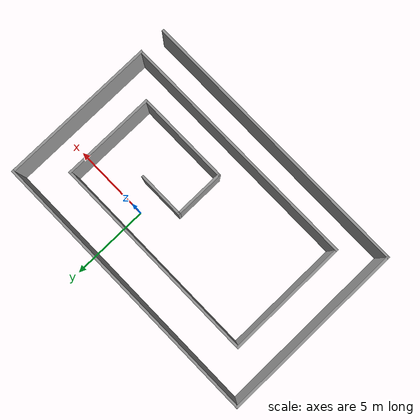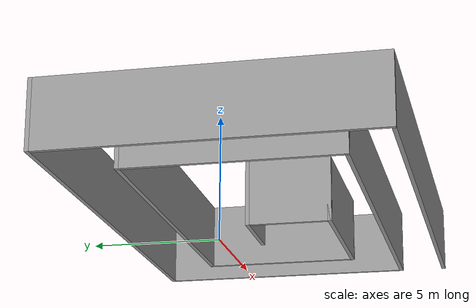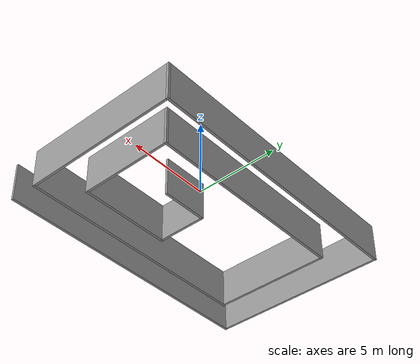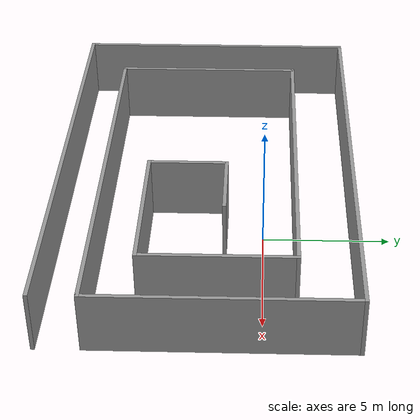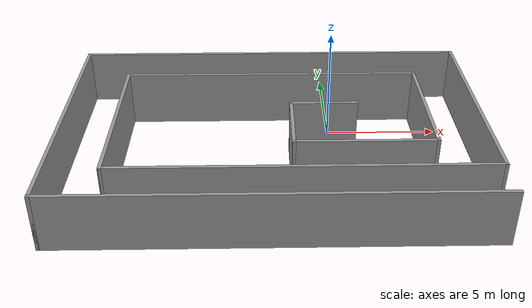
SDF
<?xml version='1.0'?>
<sdf version='1.6'>
  <model name='test'>
    <pose frame=''>-2.605 -2.29 0 0 -0 0</pose>
    <link name='Wall_0'>
      <collision name='Wall_0_Collision'>
        <geometry>
          <box>
            <size>3 0.15 2.5</size>
          </box>
        </geometry>
        <pose frame=''>0 0 1.25 0 -0 0</pose>
      </collision>
      <visual name='Wall_0_Visual'>
        <pose frame=''>0 0 1.25 0 -0 0</pose>
        <geometry>
          <box>
            <size>3 0.15 2.5</size>
          </box>
        </geometry>
        <material>
          <script>
            <uri>file://media/materials/scripts/gazebo.material</uri>
            <name>Gazebo/Grey</name>
          </script>
          <ambient>1 1 1 1</ambient>
        </material>
        <meta>
          <layer>0</layer>
        </meta>
      </visual>
      <pose frame=''>2.25 0.8 0 0 -0 3.14159</pose>
    </link>
    <link name='Wall_1'>
      <collision name='Wall_1_Collision'>
        <geometry>
          <box>
            <size>3.25 0.15 2.5</size>
          </box>
        </geometry>
        <pose frame=''>0 0 1.25 0 -0 0</pose>
      </collision>
      <visual name='Wall_1_Visual'>
        <pose frame=''>0 0 1.25 0 -0 0</pose>
        <geometry>
          <box>
            <size>3.25 0.15 2.5</size>
          </box>
        </geometry>
        <material>
          <script>
            <uri>file://media/materials/scripts/gazebo.material</uri>
            <name>Gazebo/Grey</name>
          </script>
          <ambient>1 1 1 1</ambient>
        </material>
        <meta>
          <layer>0</layer>
        </meta>
      </visual>
      <pose frame=''>0.825 -0.75 0 0 -0 -1.5708</pose>
    </link>
    <link name='Wall_10'>
      <collision name='Wall_10_Collision'>
        <geometry>
          <box>
            <size>18 0.15 2.5</size>
          </box>
        </geometry>
        <pose frame=''>0 0 1.25 0 -0 0</pose>
      </collision>
      <visual name='Wall_10_Visual'>
        <pose frame=''>0 0 1.25 0 -0 0</pose>
        <geometry>
          <box>
            <size>18 0.15 2.5</size>
          </box>
        </geometry>
        <material>
          <script>
            <uri>file://media/materials/scripts/gazebo.material</uri>
            <name>Gazebo/Grey</name>
          </script>
          <ambient>1 1 1 1</ambient>
        </material>
        <meta>
          <layer>0</layer>
        </meta>
      </visual>
      <pose frame=''>-0 -5.8 0 0 -0 0</pose>
    </link>
    <link name='Wall_2'>
      <collision name='Wall_2_Collision'>
        <geometry>
          <box>
            <size>6 0.15 2.5</size>
          </box>
        </geometry>
        <pose frame=''>0 0 1.25 0 -0 0</pose>
      </collision>
      <visual name='Wall_2_Visual'>
        <pose frame=''>0 0 1.25 0 -0 0</pose>
        <geometry>
          <box>
            <size>6 0.15 2.5</size>
          </box>
        </geometry>
        <material>
          <script>
            <uri>file://media/materials/scripts/gazebo.material</uri>
            <name>Gazebo/Grey</name>
          </script>
          <ambient>1 1 1 1</ambient>
        </material>
        <meta>
          <layer>0</layer>
        </meta>
      </visual>
      <pose frame=''>3.75 -2.3 0 0 -0 0</pose>
    </link>
    <link name='Wall_3'>
      <collision name='Wall_3_Collision'>
        <geometry>
          <box>
            <size>6 0.15 2.5</size>
          </box>
        </geometry>
        <pose frame=''>0 0 1.25 0 -0 0</pose>
      </collision>
      <visual name='Wall_3_Visual'>
        <pose frame=''>0 0 1.25 0 -0 0</pose>
        <geometry>
          <box>
            <size>6 0.15 2.5</size>
          </box>
        </geometry>
        <material>
          <script>
            <uri>file://media/materials/scripts/gazebo.material</uri>
            <name>Gazebo/Grey</name>
          </script>
          <ambient>1 1 1 1</ambient>
        </material>
        <meta>
          <layer>0</layer>
        </meta>
      </visual>
      <pose frame=''>6.675 0.625 0 0 -0 1.5708</pose>
    </link>
    <link name='Wall_4'>
      <collision name='Wall_4_Collision'>
        <geometry>
          <box>
            <size>13.5 0.15 2.5</size>
          </box>
        </geometry>
        <pose frame=''>0 0 1.25 0 -0 0</pose>
      </collision>
      <visual name='Wall_4_Visual'>
        <pose frame=''>0 0 1.25 0 -0 0</pose>
        <geometry>
          <box>
            <size>13.5 0.15 2.5</size>
          </box>
        </geometry>
        <material>
          <script>
            <uri>file://media/materials/scripts/gazebo.material</uri>
            <name>Gazebo/Grey</name>
          </script>
          <ambient>1 1 1 1</ambient>
        </material>
        <meta>
          <layer>0</layer>
        </meta>
      </visual>
      <pose frame=''>-0 3.55 0 0 -0 3.14159</pose>
    </link>
    <link name='Wall_5'>
      <collision name='Wall_5_Collision'>
        <geometry>
          <box>
            <size>7.75 0.15 2.5</size>
          </box>
        </geometry>
        <pose frame=''>0 0 1.25 0 -0 0</pose>
      </collision>
      <visual name='Wall_5_Visual'>
        <pose frame=''>0 0 1.25 0 -0 0</pose>
        <geometry>
          <box>
            <size>7.75 0.15 2.5</size>
          </box>
        </geometry>
        <material>
          <script>
            <uri>file://media/materials/scripts/gazebo.material</uri>
            <name>Gazebo/Grey</name>
          </script>
          <ambient>1 1 1 1</ambient>
        </material>
        <meta>
          <layer>0</layer>
        </meta>
      </visual>
      <pose frame=''>-6.675 -0.25 0 0 -0 -1.5708</pose>
    </link>
    <link name='Wall_6'>
      <collision name='Wall_6_Collision'>
        <geometry>
          <box>
            <size>15.75 0.15 2.5</size>
          </box>
        </geometry>
        <pose frame=''>0 0 1.25 0 -0 0</pose>
      </collision>
      <visual name='Wall_6_Visual'>
        <pose frame=''>0 0 1.25 0 -0 0</pose>
        <geometry>
          <box>
            <size>15.75 0.15 2.5</size>
          </box>
        </geometry>
        <material>
          <script>
            <uri>file://media/materials/scripts/gazebo.material</uri>
            <name>Gazebo/Grey</name>
          </script>
          <ambient>1 1 1 1</ambient>
        </material>
        <meta>
          <layer>0</layer>
        </meta>
      </visual>
      <pose frame=''>1.125 -4.05 0 0 -0 0</pose>
    </link>
    <link name='Wall_7'>
      <collision name='Wall_7_Collision'>
        <geometry>
          <box>
            <size>10 0.15 2.5</size>
          </box>
        </geometry>
        <pose frame=''>0 0 1.25 0 -0 0</pose>
      </collision>
      <visual name='Wall_7_Visual'>
        <pose frame=''>0 0 1.25 0 -0 0</pose>
        <geometry>
          <box>
            <size>10 0.15 2.5</size>
          </box>
        </geometry>
        <material>
          <script>
            <uri>file://media/materials/scripts/gazebo.material</uri>
            <name>Gazebo/Grey</name>
          </script>
          <ambient>1 1 1 1</ambient>
        </material>
        <meta>
          <layer>0</layer>
        </meta>
      </visual>
      <pose frame=''>8.925 0.875 0 0 -0 1.5708</pose>
    </link>
    <link name='Wall_8'>
      <collision name='Wall_8_Collision'>
        <geometry>
          <box>
            <size>18 0.15 2.5</size>
          </box>
        </geometry>
        <pose frame=''>0 0 1.25 0 -0 0</pose>
      </collision>
      <visual name='Wall_8_Visual'>
        <pose frame=''>0 0 1.25 0 -0 0</pose>
        <geometry>
          <box>
            <size>18 0.15 2.5</size>
          </box>
        </geometry>
        <material>
          <script>
            <uri>file://media/materials/scripts/gazebo.material</uri>
            <name>Gazebo/Grey</name>
          </script>
          <ambient>1 1 1 1</ambient>
        </material>
        <meta>
          <layer>0</layer>
        </meta>
      </visual>
      <pose frame=''>-0 5.8 0 0 -0 3.14159</pose>
    </link>
    <link name='Wall_9'>
      <collision name='Wall_9_Collision'>
        <geometry>
          <box>
            <size>11.75 0.15 2.5</size>
          </box>
        </geometry>
        <pose frame=''>0 0 1.25 0 -0 0</pose>
      </collision>
      <visual name='Wall_9_Visual'>
        <pose frame=''>0 0 1.25 0 -0 0</pose>
        <geometry>
          <box>
            <size>11.75 0.15 2.5</size>
          </box>
        </geometry>
        <material>
          <script>
            <uri>file://media/materials/scripts/gazebo.material</uri>
            <name>Gazebo/Grey</name>
          </script>
          <ambient>1 1 1 1</ambient>
        </material>
        <meta>
          <layer>0</layer>
        </meta>
      </visual>
      <pose frame=''>-8.925 0 0 0 -0 -1.5708</pose>
    </link>
    <static>1</static>
  </model>
</sdf>
